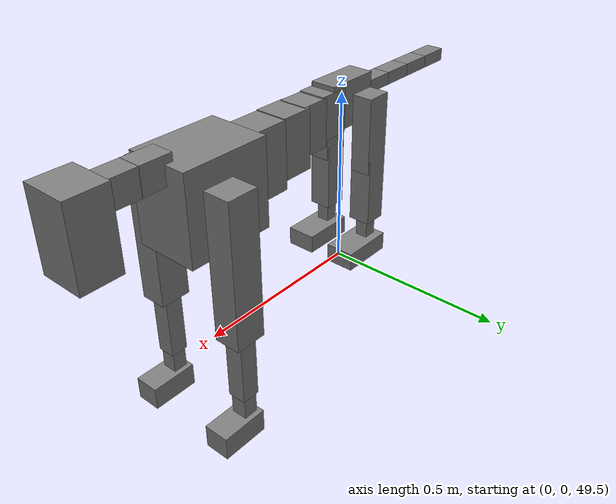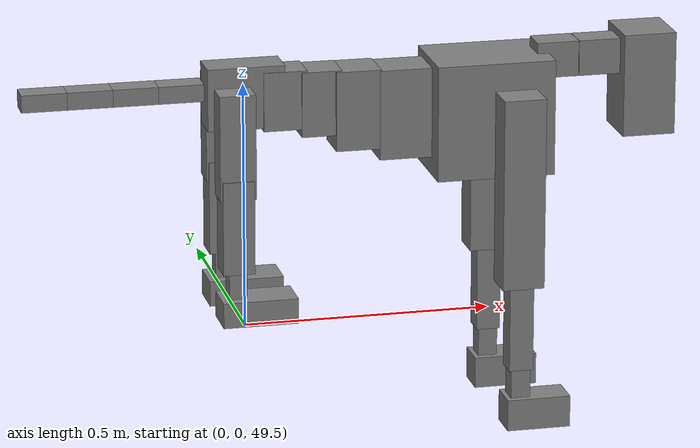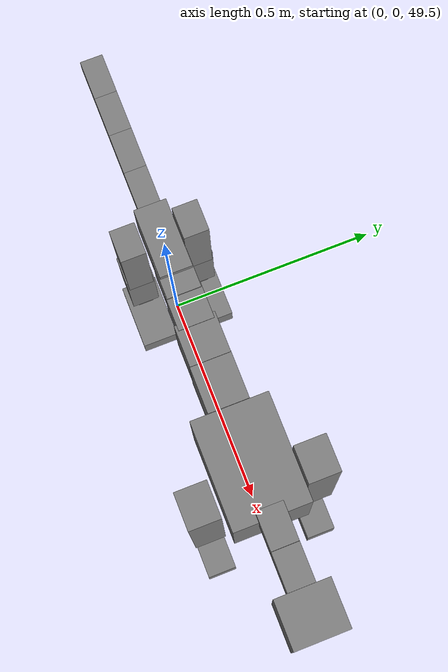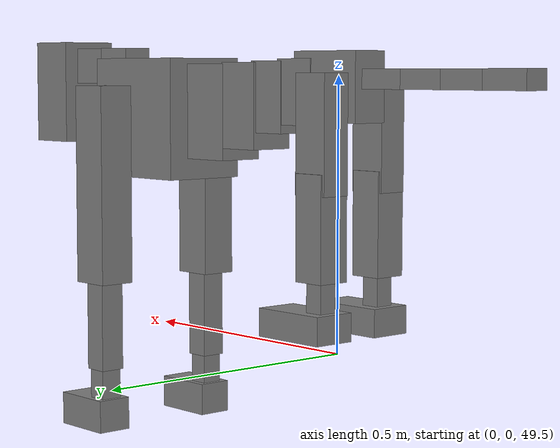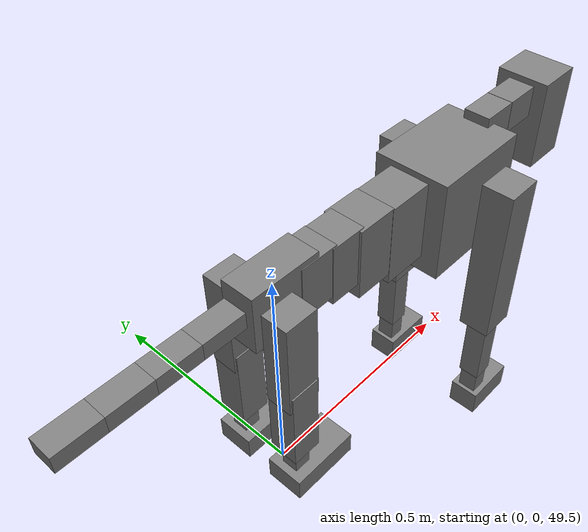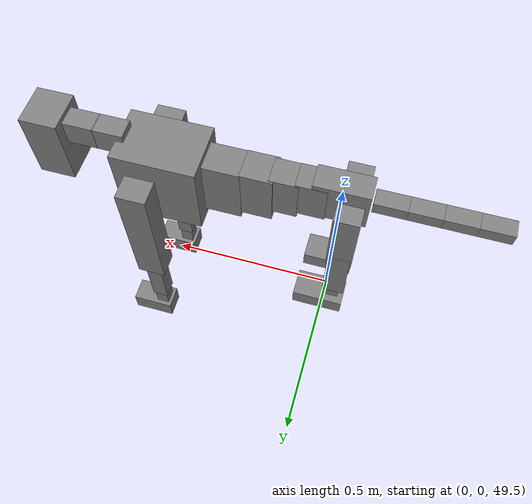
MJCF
<mujoco model="dog">

    <default>
        <joint armature="0.02" stiffness="1" damping="0.2" limited="true"/>
        <geom condim="3" friction="1 0.05 0.05" margin="0.01"/>
        <motor ctrllimited="true" ctrlrange="-1.0 1.0" forcelimited="true" gear="50"/>
    </default>

    <compiler inertiafromgeom="true" angle="radian"/>

    <option timestep="0.016" iterations="50" tolerance="1e-10" solver="Newton" jacobian="dense" cone="pyramidal"/>

    <size nconmax="20000" njmax="60000" nstack="5000000"/>
    <visual>
        <map force="0.1" zfar="30"/>
        <rgba haze="0.15 0.25 0.35 1"/>
        <quality shadowsize="2048"/>
        <global offwidth="800" offheight="800"/>
    </visual>

    <asset>
        <texture type="skybox" builtin="gradient" rgb1="0.3 0.5 0.7" rgb2="0 0 0" width="512" height="512"/>
        <texture name="texplane" type="2d" builtin="checker" rgb1=".2 .3 .4" rgb2=".1 0.15 0.2" width="512" height="512"
                 mark="cross" markrgb=".8 .8 .8"/>
        <texture name="texgeom" type="cube" builtin="flat" mark="cross" width="127" height="1278" rgb1="0.8 0.6 0.4"
                 rgb2="0.8 0.6 0.4" markrgb="1 1 1" random="0.01"/>

        <material name="matplane" reflectance="0.3" texture="texplane" texrepeat="1 1" texuniform="true"/>
        <material name="matgeom" texture="texgeom" texuniform="true" rgba="0.8 0.6 .4 1"/>
    </asset>

    <worldbody>
        <geom name="floor" pos="0 0 0" size="0 0 .25" type="plane" material="matplane" condim="3"/>

        <light directional="false" diffuse=".2 .2 .2" specular="0 0 0" pos="0 0 5" dir="0 0 -1" castshadow="false"/>
        <light mode="targetbodycom" target="torso" directional="false" diffuse=".8 .8 .8" specular="0.3 0.3 0.3"
               pos="0 0 4.0" dir="0 0 -1"/>

        <body name="root" pos="0 0 50">
            <freejoint name="root_1"/>
            <geom type="box" pos="0 0 -0.02" size="0.0774  0.0358  0.063" density="2030"/>

            <body name="spine1" pos="0.054 0 0">
                <joint name="spine1_y" axis="0 1 0" range="0 0.7" limited="true"/>
                <geom type="box" pos="0.02375 0 -0.03" size="0.04375  0.0375  0.05985" density="2030"/>

                <body name="spine2" pos="0.0612 0 0">
                    <joint name="spine2_y" axis="0 1 0" range="-0.15 0.15" limited="true"/>
                    <geom type="box" pos="0.03555  0  -0.04" size="0.04055  0.039  0.06615" density="2030"/>

                    <body name="spine3" pos="0.0730 0 0">
                        <joint name="spine3_y" axis="0 1 0" range="-0.15 0.15" limited="true"/>
                        <geom type="box" pos="0.03555  0  -0.057" size="0.04555  0.0445  0.081" density="2030"/>

                        <body name="spine4" pos="0.0780 0 0">
                            <joint name="spine4_y" axis="0 1 0" range="-0.15 0.15" limited="true"/>
                            <geom type="box" pos="0.05265  0  -0.07" size="0.05265  0.045  0.09135" density="2030"/>

                            <body name="torso" pos="0.1082 0 0">
                                <joint name="torso_y" axis="0 1 0" range="-0.15 0.15" limited="true"/>
                                <geom type="box" pos="0.11925  0  -0.085" size="0.11925  0.085  0.11745"
                                      density="2030"/>

                                <body name="neck1" pos="0.2160  0   0.0180">
                                    <joint name="neck1_y" axis="0 1 0" range="-1.2  -1" limited="true"/>
                                    <geom type="box" pos="0.0423  0  0" size="0.0423  0.03  0.036" density="2325"/>

                                    <body name="neck2" pos="0.0853  0  0">
                                        <joint name="neck2_y" axis="0 1 0" range="0.1  0" limited="true"/>
                                        <geom type="box" pos="0.0423  0  0" size="0.0423  0.03  0.036" density="2325"/>

                                        <body name="head" pos="0.0853  0  0">
                                            <joint name="head_y" axis="0 1 0" range="-0.3  -0.2" limited="true"/>
                                            <geom type="box" pos="0.0531  0  -0.055" size="0.0531  0.06  0.1044"
                                                  density="4030"/>

                                        </body>
                                    </body>
                                </body>

                                <body name="front_shoulder" pos="0.156  0   -0.0480">
                                    <joint name="front_shoulder_y" axis="0 1 0" range="-1 1.5" limited="true"/>
                                    <geom type="box" pos="0 0.13 -0.1683" size="0.0423  0.0362  0.1950" density="1158"/>
                                    <geom type="box" pos="0 -0.13 -0.1683" size="0.0423  0.0362  0.1950"
                                          density="1158"/>

                                    <body name="front_elbow" pos="0  0  -0.3366">
                                        <joint name="front_elbow_y" axis="0 1 0" range="-2 0" limited="true"/>
                                        <geom type="box" pos="0 0.13 -0.1005" size="0.0244  0.0249  0.1005"
                                              density="1081"/>
                                        <geom type="box" pos="0 -0.13 -0.1005" size="0.0244  0.0249  0.1005"
                                              density="1081"/>

                                        <body name="front_wrist" pos="0  0  -0.2010">
                                            <joint name="front_wrist_y" axis="0 1 0" range="-0.2 0" limited="true"/>
                                            <geom type="box" pos="0 0.13 -0.0366" size="0.0196  0.0217  0.0497"
                                                  density="1664"/>
                                            <geom type="box" pos="0 -0.13 -0.0366" size="0.0196  0.0217  0.0497"
                                                  density="1664"/>

                                            <body name="front_finger_end" pos="0  0  -0.0731">
                                                <joint name="front_finger_y" axis="0 1 0" range="-0.4 1"
                                                       limited="true"/>
                                                <geom type="box" pos="0.0351  0.13  -0.0172"
                                                      size="0.0644  0.0351  0.0322" density="1515"/>
                                                <geom type="box" pos="0.0351  -0.13  -0.0172"
                                                      size="0.0644  0.0351  0.0322" density="1515"/>

                                            </body>

                                        </body>
                                    </body>
                                </body>

                            </body>
                        </body>
                    </body>
                </body>
            </body>

            <body name="back_hip" pos="-0.03 0 -0.018">
                <joint name="back_hip_y" axis="0 1 0" range="-1.5 0.3" limited="true"/>
                <geom type="box" pos="0 0.07 -0.0837" size="0.0360  0.0282  0.1065" density="1154"/>
                <geom type="box" pos="0 -0.07 -0.0837" size="0.0360  0.0282  0.1065" density="1154"/>

                <body name="back_knee" pos="0  0  -0.1673">
                    <joint name="back_knee_y" axis="0 1 0" range="0 2.8" limited="true"/>
                    <geom type="box" pos="0 0.07 -0.0796" size="0.0317  0.0312  0.0952" density="1227"/>
                    <geom type="box" pos="0 -0.07 -0.0796" size="0.0317  0.0312  0.0952" density="1227"/>

                    <body name="back_ankle" pos="0  0  -0.1592">
                        <joint name="back_ankle_y" axis="0 1 0" range="-2.2 0" limited="true"/>
                        <geom type="box" pos="0 0.07 -0.0424" size="0.0179  0.0179  0.0537" density="1284"/>
                        <geom type="box" pos="0 -0.07 -0.0424" size="0.0179  0.0179  0.0537" density="1284"/>

                        <body name="back_toe_end" pos="0  0  -0.0848">
                            <joint name="back_toe_y" axis="0 1 0" range="-0.4 1" limited="true"/>
                            <geom type="box" pos="0.0411  0.07  -0.0108" size="0.0753  0.0411  0.0258" density="1515"/>
                            <geom type="box" pos="0.0411  -0.07  -0.0108" size="0.0753  0.0411  0.0258" density="1515"/>

                        </body>
                    </body>
                </body>
            </body>

            <body name="tail1" pos="-0.074 0 -0.006">
                <joint name="tail1_y" axis="0 1 0" range="-0.2 0.2" limited="true"/>
                <geom type="box" pos="-0.0536  0  0" size="0.045  0.025  0.0175" density="1587"/>

                <body name="tail2" pos="-0.09 0 0">
                    <joint name="tail2_y" axis="0 1 0" range="-0.2 0.2" limited="true"/>
                    <geom type="box" pos="-0.0536  0  0" size="0.045  0.025  0.0175" density="1587"/>

                    <body name="tail3" pos="-0.09 0 0">
                        <joint name="tail3_y" axis="0 1 0" range="-0.2 0.2" limited="true"/>
                        <geom type="box" pos="-0.0536  0  0" size="0.045  0.025  0.0175" density="1587"/>

                        <body name="tail4" pos="-0.09 0 0">
                            <joint name="tail4_y" axis="0 1 0" range="-0.2 0.2" limited="true"/>
                            <geom type="box" pos="-0.0536  0  0" size="0.045  0.025  0.0175" density="1587"/>

                        </body>
                    </body>
                </body>
            </body>
        </body>
    </worldbody>

    <actuator>
        <motor joint="spine1_y" forcerange="-150 150     "/>
        <motor joint="spine2_y" forcerange="-150 150     "/>
        <motor joint="spine3_y" forcerange="-150 150     "/>
        <motor joint="spine4_y" forcerange="-150 150     "/>
        <motor joint="torso_y" forcerange="-150 150     "/>
        <motor joint="neck1_y" forcerange="-100 100       "/>
        <motor joint="neck2_y" forcerange="-100 100       "/>
        <motor joint="head_y" forcerange="-150 150       "/>
        <motor joint="front_shoulder_y" forcerange="-143.90 197.27"/>
        <motor joint="front_elbow_y" forcerange="-142.77 138.31"/>
        <motor joint="front_wrist_y" forcerange="-77.62 96.32"/>
        <motor joint="front_finger_y" forcerange="-88.57 58.83"/>
        <motor joint="back_hip_y" forcerange="-218.99 357.46"/>
        <motor joint="back_knee_y" forcerange="-347.74 306.04"/>
        <motor joint="back_angle_y" forcerange="-60.22 125.47"/>
        <motor joint="back_toe_y" forcerange="-115.59 133.04"/>
        <motor joint="tail1_y" forcerange="-50 50     "/>
        <motor joint="tail2_y" forcerange="-50 50     "/>
        <motor joint="tail3_y" forcerange="-50 50     "/>
        <motor joint="tail4_y" forcerange="-50 50     "/>
    </actuator>
</mujoco>
